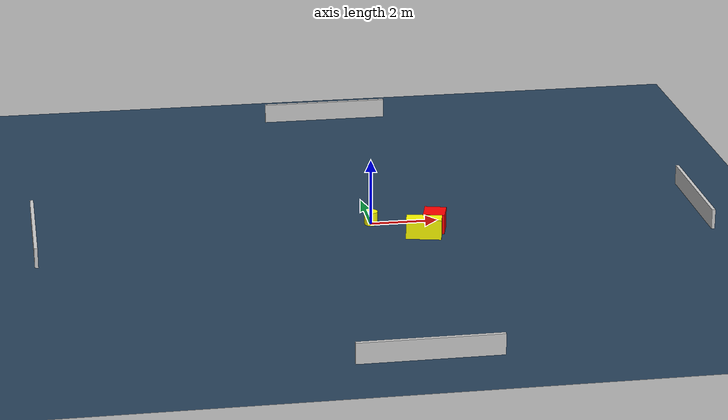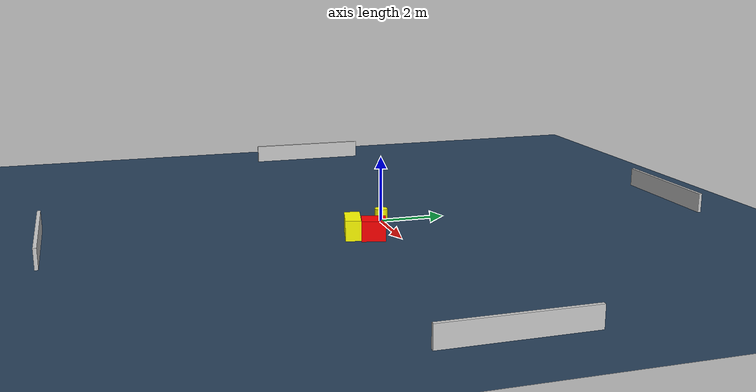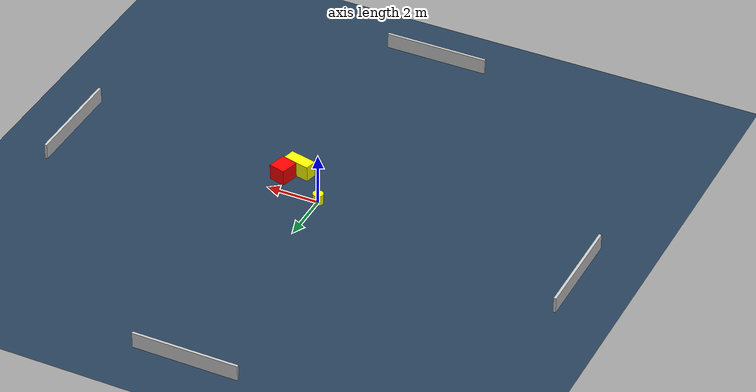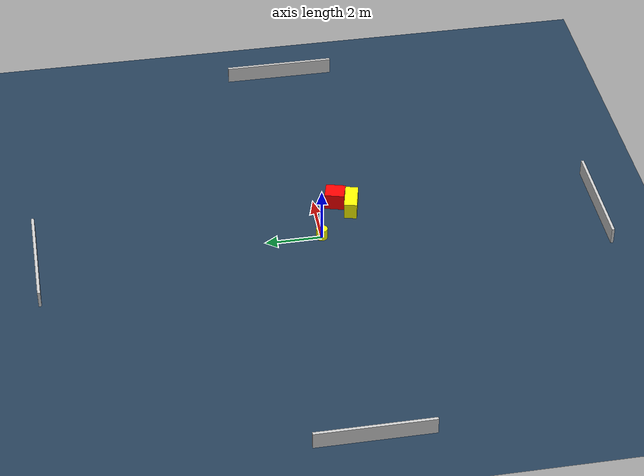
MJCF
<?xml version="1.0" ?>
<mujoco model="generated_environment">
  <option timestep="0.01" integrator="RK4" cone="elliptic"/>
  <default>
    <geom density="1"/>
  </default>
  <asset>
    <texture builtin="gradient" height="3072" name="skybox" rgb1="0.3 0.5 0.7" rgb2="0 0 0" type="skybox" width="512"/>
    <texture builtin="checker" height="300" name="groundplane" rgb1="0.2 0.3 0.4" rgb2="0.1 0.2 0.3" type="2d" width="300"/>
    <material name="groundplane" reflectance="0.2" texrepeat="5 5" texture="groundplane"/>
  </asset>
  <worldbody>
    <light dir="0 0 -1" directional="true" pos="0 0 1.5"/>
    <geom condim="3" friction="0.5 0.005 0.001" material="groundplane" name="floor" pos="0 0 0" size="0 0 0.05" type="plane"/>
    <body name="walls">
      <geom name="wall_1" condim="4" pos="-10.0 0.0 0.3" rgba="0.800000011920929 0.800000011920929 0.800000011920929 1.0" size="0.05 2.0 0.3" type="box"/>
      <geom name="wall_2" condim="4" pos="10.0 0.0 0.3" rgba="0.800000011920929 0.800000011920929 0.800000011920929 1.0" size="0.05 2.0 0.3" type="box"/>
      <geom name="wall_3" condim="4" pos="0.0 -10.0 0.3" rgba="0.800000011920929 0.800000011920929 0.800000011920929 1.0" size="2.0 0.05 0.3" type="box"/>
      <geom name="wall_4" condim="4" pos="0.0 10.0 0.3" rgba="0.800000011920929 0.800000011920929 0.800000011920929 1.0" size="2.0 0.05 0.3" type="box"/>
    </body>
    <body name="robot">
      <joint name="joint_x" type="slide" pos="0 0 0" axis="1 0 0"/>
      <joint name="joint_y" type="slide" pos="0 0 0" axis="0 1 0"/>
      <geom name="robot" type="cylinder" pos="0.0 0.0 0.2" size="0.2 0.2 0.0" mass="5.0" friction="1.0 0.005 0.0001" condim="4" rgba="1.0 1.0 0.0 1.0"/>
    </body>
    <body name="obstacle_1_movable">
      <geom name="obstacle_1_movable" condim="4" pos="1.3791498338909505 -1.29414529891575 0.3" euler="0 0 256.88872956988484" friction="0.0 0.005 0.001" rgba="1.0 1.0 0.0 1.0" size="0.22935377012557104 0.5235210477554602 0.3" type="box" mass="0.1"/>
      <joint type="free"/>
    </body>
    <body name="obstacle_2_static">
      <geom name="obstacle_2_static" condim="4" pos="1.7891715830766515 -0.7812974365982294 0.3" euler="0 0 344.8334529703024" friction="0.0 0.005 0.001" rgba="1.0 0.0 0.0 1.0" size="0.32202459600312633 0.3512897801992416 0.3" type="box"/>
    </body>
  </worldbody>
  <actuator>
    <motor name="actuator_x" joint="joint_x" gear="1" ctrlrange="-1 1"/>
    <motor name="actuator_y" joint="joint_y" gear="1" ctrlrange="-1 1"/>
  </actuator>
</mujoco>
